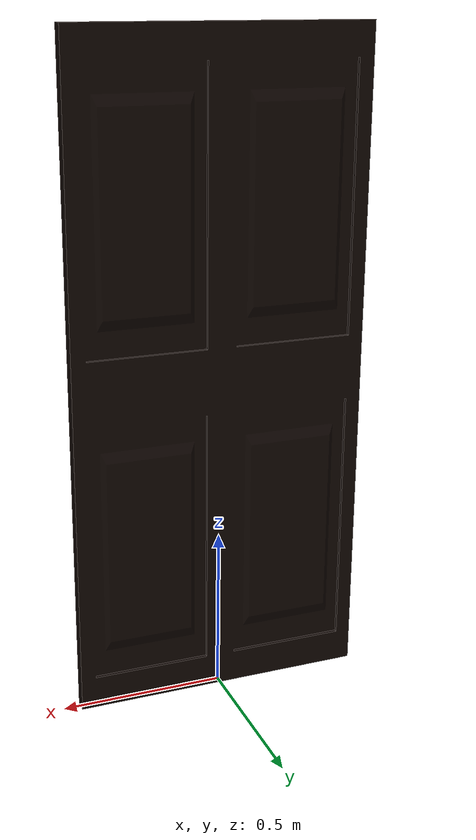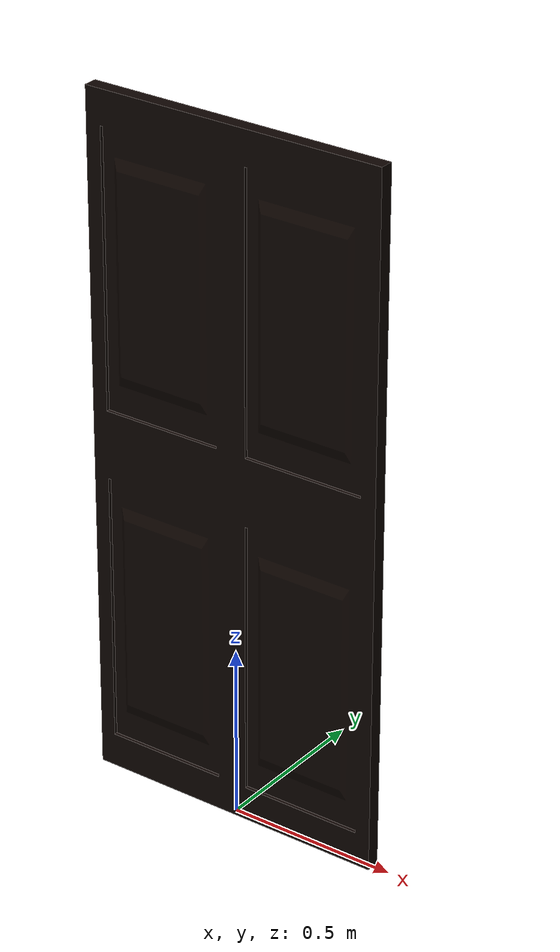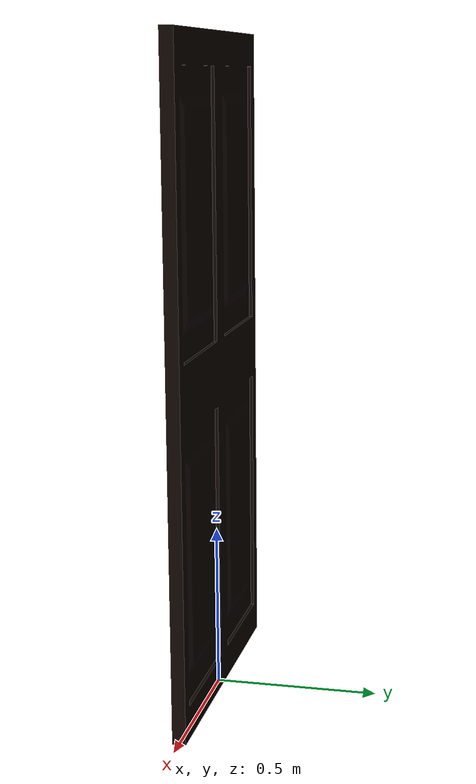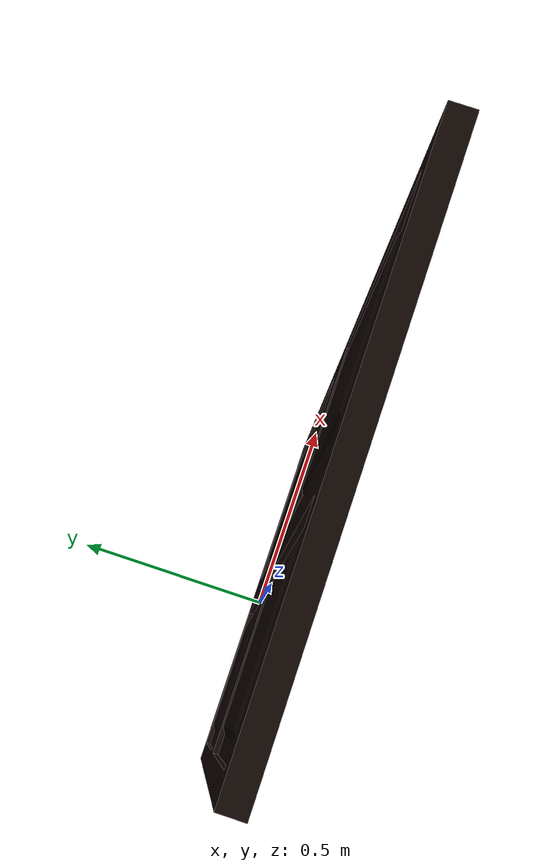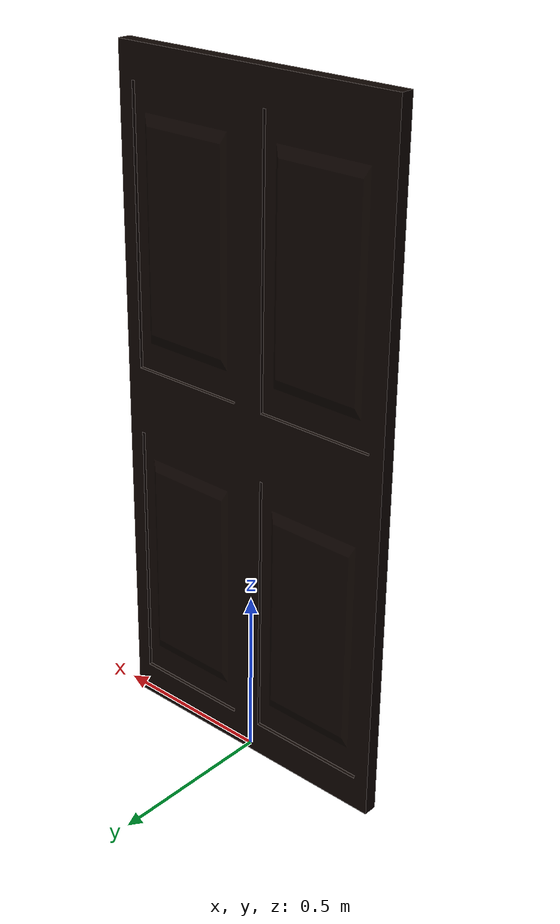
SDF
<?xml version="1.0" ?>
<sdf version="1.0">
  <model name="door_90">
    <static>true</static>
    <link name="door_90">
      <collision name="door_90">
        <pose>0 0 0 0 0 0</pose>
        <geometry>
          <mesh>
            <uri>model://door_90/meshes/test.dae</uri>
          </mesh>
        </geometry>
      </collision>

      <visual name="door_90_mesh">
	  <cast_shadows>true</cast_shadows>
        <geometry>
          <mesh>
	        <uri>model://door_90/meshes/test.dae</uri>
	      </mesh>
        </geometry>
      </visual>
    </link>
  </model>
</sdf>
